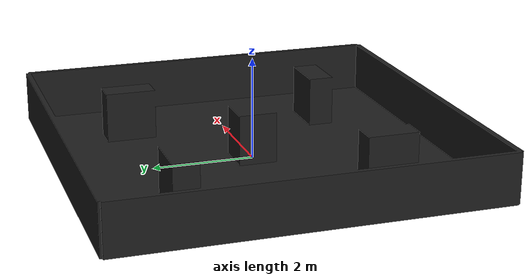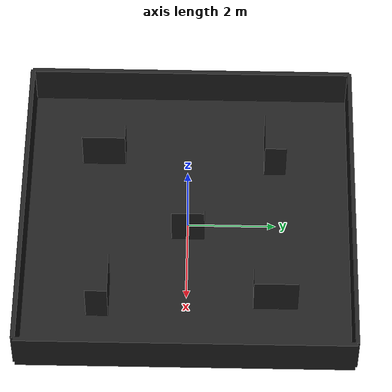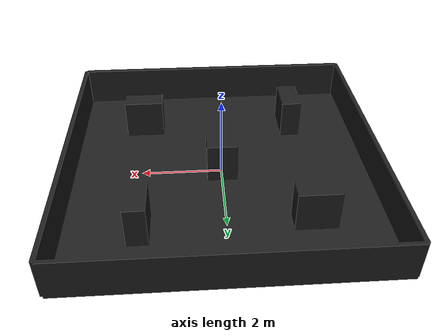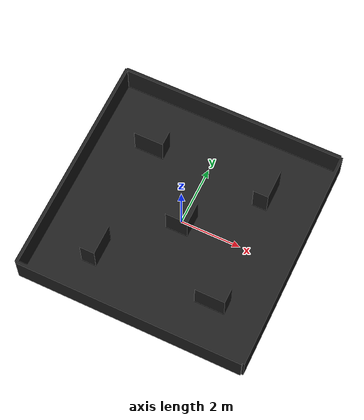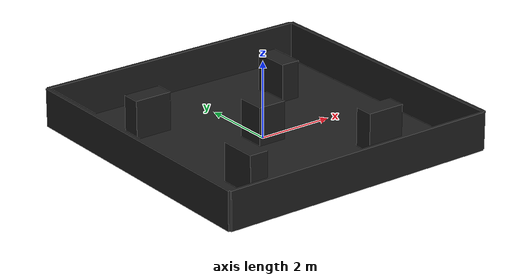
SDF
<sdf version='1.5'>
  <model name='ros_symbol'>
    <static>1</static>
    <link name='symbol'>
      <!-- Draw world -->
      <collision name='body'>
        <pose>0 0 0 0 0 0</pose>
        <geometry>
          <mesh>
            <uri>model://custom_turtlebot3_world/meshes/world.dae</uri>
            <scale>0.5 0.5 0.5</scale>
          </mesh>
        </geometry>
        <max_contacts>10</max_contacts>
        <surface>
          <bounce/>
          <friction>
            <ode/>
          </friction>
          <contact>
            <ode/>
          </contact>
        </surface>
      </collision>

      <visual name='body'>
        <pose>0 0 0 0 0 0</pose>
        <geometry>
          <mesh>
            <uri>model://custom_turtlebot3_world/meshes/world.dae</uri>
            <scale>0.5 0.5 0.5</scale>
          </mesh>
        </geometry>
        <material>
          <script>
            <uri>file://media/materials/scripts/gazebo.material</uri>
            <name>Gazebo/FlatBlack</name>
          </script>
        </material>
      </visual>
    </link>
  </model>
</sdf>
